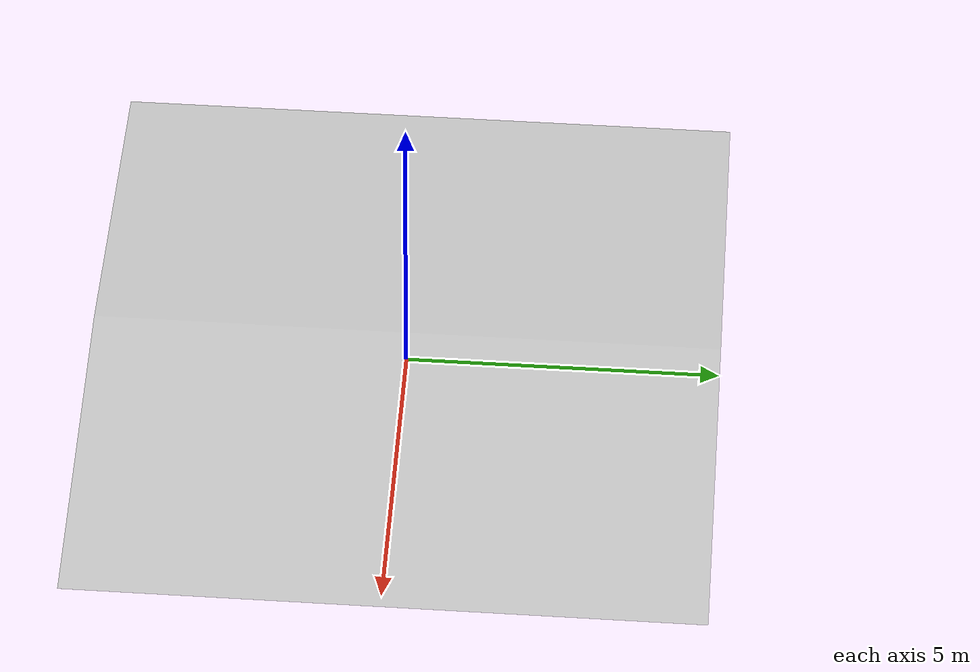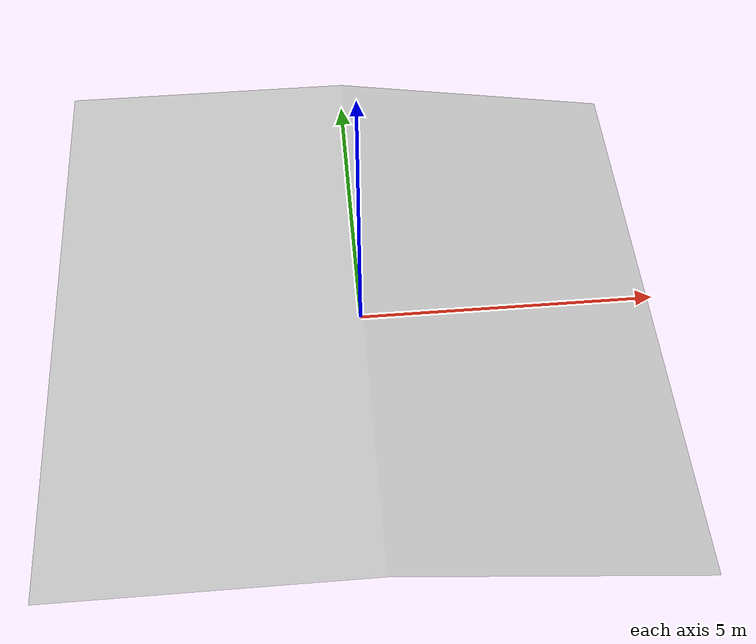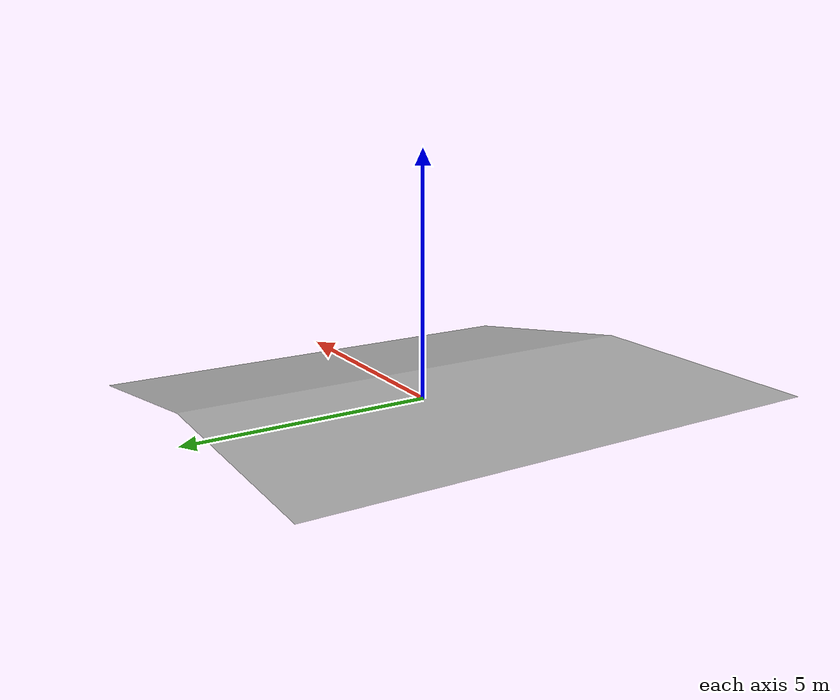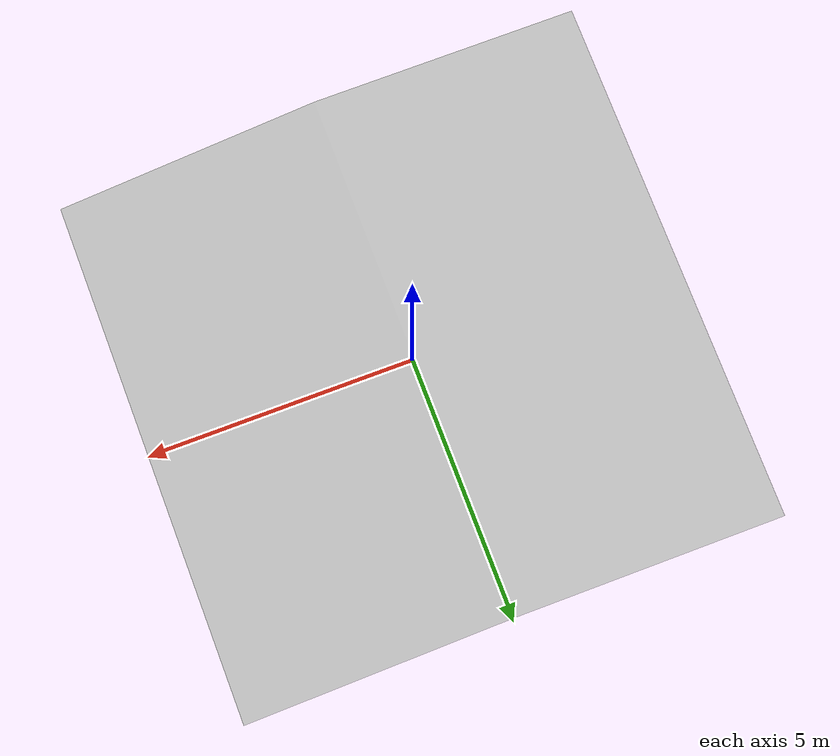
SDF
<?xml version="1.0" ?>
<sdf version="1.6">
  <world name="world">
    <model name="arena_ramp">
      <pose>0.0 0.0 0.0 0.0 0.0 0.0</pose>
      <link name="heightmap">
        <pose>0 0 -0.13101944820760303 0 0 0</pose>
        <collision name="heightmap_collision">
          <pose>-5.0 -5.0 -0.13101944820760303 0 0 0</pose>
          <geometry>
            <mesh>
              <uri>meshes/ramp.obj</uri>
              <scale>1.0 1.0 1.0</scale>
            </mesh>
          </geometry>
        </collision>
        <visual name="heightmap_visual">
          <pose>-5.0 -5.0 -0.13101944820760303 0 0 0</pose>
          <geometry>
            <mesh>
              <uri>meshes/ramp.obj</uri>
              <scale>1.0 1.0 1.0</scale>
            </mesh>
          </geometry>
          <material/>
        </visual>
      </link>
    </model>
  </world>
</sdf>
